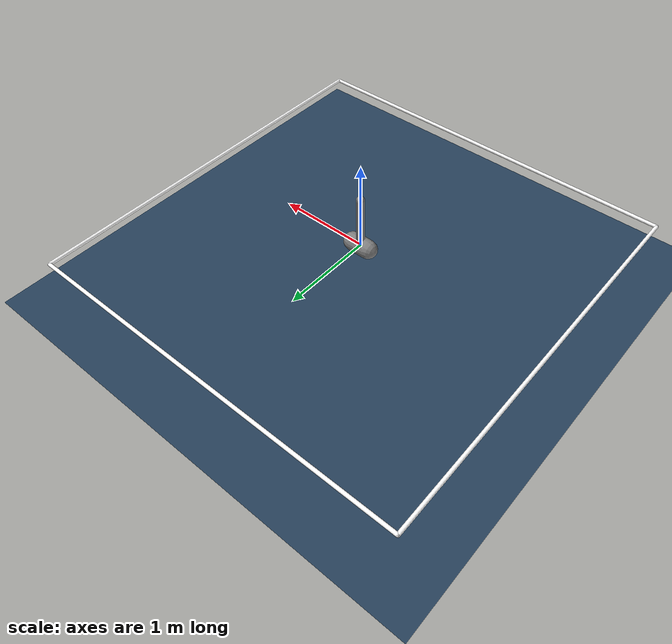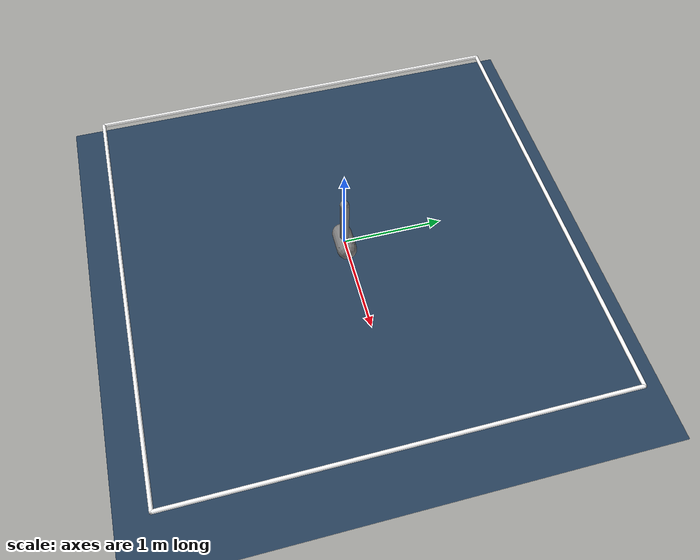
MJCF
<mujoco model="inverted two-axis pendulum">
  <compiler inertiafromgeom="true"/>
  <option gravity="0 0 -9.81" timestep="0.02" />
  <size nstack="3000"/>

  <asset>
    <texture type="skybox" builtin="gradient" rgb1="0.8 0.8 0.8" rgb2="0 0 0" width="512" height="3072"/>
    <texture name="floor_tex" type="2d" builtin="checker" rgb1=".2 .3 .4" rgb2=".1 .2 .3" width="100" height="100" />
    <material name="floor_material" texture="floor_tex" texuniform="true" />
  </asset>

  <worldbody>
    <light cutoff="100" diffuse="1 1 1" dir="-0 0 -1.2" directional="true" exponent="1" pos="0 0 1.3" specular=".1 .1 .1"/>
    <geom conaffinity="1" condim="3" material="floor_material" name="floor" pos="0 0 -0.50" size="40 40 40" type="plane" rgba="0.5 0.5 0.5 1.0"/>
    <light diffuse=".5 .5 .5" pos="0 0 3" dir="0 0 -1"/>

    <geom pos="0 2.2 0" quat="0.707 0 0.707 0" size="0.02 2.2" type="capsule" rgba="1 1 1 1"/>
    <geom pos="0 -2.2 0" quat="0.707 0 0.707 0" size="0.02 2.2" type="capsule" rgba="1 1 1 1"/>
    <geom pos="2.2 0 0" quat="0.707 0.707 0 0" size="0.02 2.2" type="capsule" rgba="1 1 1 1"/>
    <geom pos="-2.2 0 0" quat="0.707 0.707 0 0" size="0.02 2.2" type="capsule" rgba="1 1 1 1"/>

    <body name="cart" pos="0 0 0">
      <joint axis="1 0 0" limited="true" name="x_slider" pos="0 0 0" range="-2 2" type="slide"/>
      <joint axis="0 1 0" limited="true" name="y_slider" pos="0 0 0" range="-2 2" type="slide"/>
      <geom name="cart" pos="0 0 0" quat="0.707 0 0.707 0" size="0.1 0.1" type="capsule"/>

      <body name="pole" pos="0 0 0">
        <joint axis="0 1 0" limited="false" name="hinge_x" pos="0 0 0" type="hinge"/>
        <joint axis="1 0 0" limited="false" name="hinge_y" pos="0 0 0" type="hinge"/>
        <geom fromto="0 0 0 0 0 0.6" name="pole"  size="0.045" type="capsule"/>
      </body>
    </body>
  </worldbody>

  <actuator>
    <motor ctrllimited="true" ctrlrange="-3 3" gear="100" joint="x_slider" name="x_slide"/>
    <motor ctrllimited="true" ctrlrange="-3 3" gear="100" joint="y_slider" name="y_slide"/>
  </actuator>
</mujoco>
